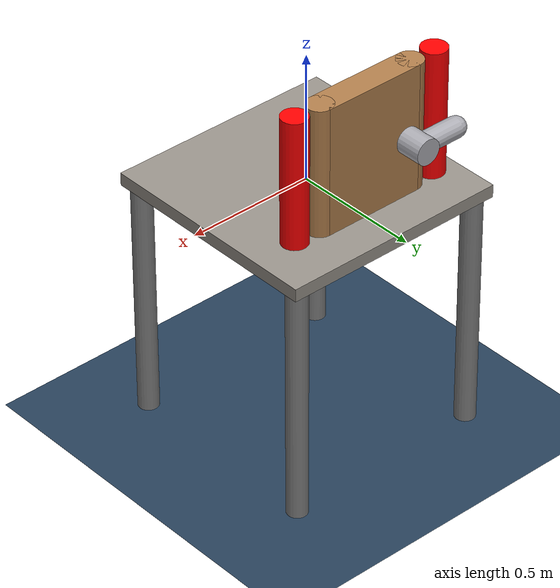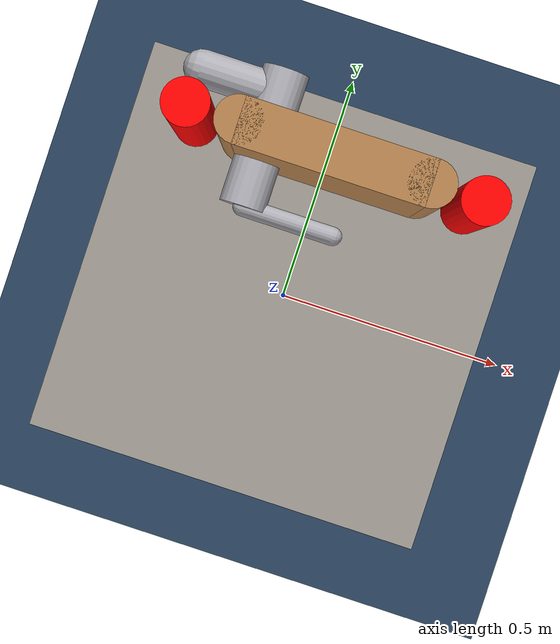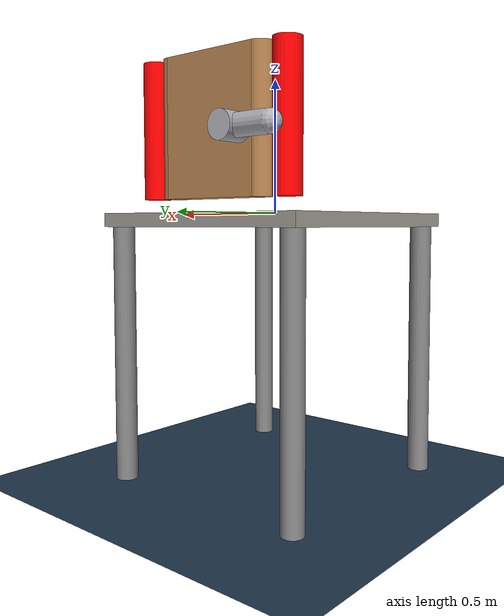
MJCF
<mujoco model='Door-Open-Environment'>

    <!-- ======= COMPILER & OPTIONS ======= -->
    <compiler angle="radian" meshdir='resources/meshes/' texturedir='resources/textures/' />
    <option apirate="200" iterations="20" noslip_iterations="20"/>
    <size njmax="500" nconmax="100" nstack="600000" nuser_body="9" nuser_jnt="1" nuser_site="1" nuser_tendon="1" nuser_actuator="16" nuser_sensor="1" />

    <!-- ======= VISUAL SETTINGS ======= -->
    <visual>
        <global offwidth="3024" offheight="1680" />
        <quality shadowsize="4096" offsamples="8" />
        <map force="0.1" fogend="5" />
    </visual>

    <!-- ======= DEFAULTS ======= -->
    <default class="main">
        <mesh scale="0.001 0.001 0.001" />
        <joint limited="true" margin="0.01" armature="0.001" damping="0.05" frictionloss="0.001" />
        <geom friction="1 0.5 0.01" margin="0.0005" />
        <site size="0.005 0 0" rgba="0.4 0.9 0.4 1" />
        <tendon limited="true" />
        <general ctrllimited="true" ctrlrange="-1 1" user="0 1 0.03 0.0939711 0.513477 0.0358776 1.23598 8.40409 0.485031 6.04244 1.02187 0.175297 0.121642 0 0 0" />
    </default>

    <!-- ======= ASSETS ======= -->
    <asset>
        <!-- Textures -->
        <texture type="cube" name="texgeom" builtin="flat" mark="cross" rgb1="0.3 0.6 0.5" rgb2="0.3 0.6 0.5" width="127" height="762" />
        <texture type="cube" name="wood" file="wood.png" />
        <texture type="2d" name="wood2d" file="wood.png" />
        <texture type="cube" name="square" file="square.png" />
        <texture type="cube" name="foil" file="silverRaw.png" />
        <texture type="cube" name="woodb" file="woodb.png" />
        <texture type="2d" name="groundplane" builtin="checker" rgb1="0.2 0.3 0.4" rgb2="0.1 0.2 0.3" width="100" height="100" />
        <texture type="2d" name="marble2d" file="marble.png" />
        <texture type="cube" name="marblecube" file="marble.png" />

        <!-- Materials -->
        <material name="MatColl" specular="1" shininess="0.3" reflectance="0.5" rgba="0.4 0.5 0.6 1" />
        <material name="MatViz" specular="0.75" shininess="0.1" reflectance="0.5" rgba="0.9 0.7 0.5 1" />
        <material name="MatGnd" specular="0.3" shininess="0.3" reflectance="0.3" rgba="0.5 0.55 0.5 1" />
        <material name="object" texture="texgeom" />
        <material name="groundplane" texture="groundplane" texrepeat="10 10" />
        <material name="table2d" texture="marble2d" reflectance="0.3" rgba="0.8 0.8 0.8 1" />
        <material name="tablecube" texture="marblecube" rgba="0.8 0.8 0.8 1" />
        <material name="MatFoil" texture="foil" specular="1" shininess="0.3" rgba="0.9 0.9 0.9 1" />
        <material name="MatPlane" specular="0.3" shininess="0.3" rgba="0.3 0.3 0.2 1" />
        <material name="MatWood" texture="wood" texrepeat="3 3" specular="0.4" shininess="0.1" />
        <material name="MatSquare" texture="square" specular="1" shininess="0.6" rgba="0.8 0.8 0.8 1" />
        <material name="MatWoodR" texture="wood" specular="1" shininess="0.3" rgba="1 0.5 0.5 1" />
        <material name="MatWoodG" texture="wood" specular="1" shininess="0.3" rgba="0.2 1 0.2 1" />
        <material name="MatWoodB" texture="woodb" specular="1" shininess="0.3" />
    </asset>

    <!-- ======= WORLD ======= -->
    <worldbody>
        <!-- Lighting -->
        <light directional='false' diffuse='.7 .7 .7' specular='0.03 0.03 0.03' pos='-1 -1.0 4.0' dir='1 1.0 -4'/>

        <!-- Ground -->
        <geom name='ground' size="1.5 1.5 0.25" pos="0 0 -1" type="plane" contype="1" conaffinity="0" material="groundplane" />

        <!-- Cameras -->
        <camera name="fixed" pos="0 -0.7 0.7" quat="0.92388 0.382683 0 0" />
        <camera name="vil_camera" pos="0 -1.2 1.2" quat="0.92388 0.382683 0 0" />

        <!-- ======= TABLE ======= -->
        <body name="table">
            <geom size="0.45 0.45 0.025" pos="0 0 -0.025" type="box" material="tablecube" />
            <geom size="0.04 0.5" pos="0.4 0.4 -0.501" quat="0 1 0 0" type="cylinder" contype="0" conaffinity="0" />
            <geom size="0.04 0.5" pos="-0.4 0.4 -0.501" quat="0 1 0 0" type="cylinder" contype="0" conaffinity="0" />
            <geom size="0.04 0.5" pos="0.4 -0.4 -0.501" quat="0 1 0 0" type="cylinder" contype="0" conaffinity="0" />
            <geom size="0.04 0.5" pos="-0.4 -0.4 -0.501" quat="0 1 0 0" type="cylinder" contype="0" conaffinity="0" />
        </body>

        <!-- ======= DOOR FRAME ======= -->
        <body name="frame" pos="-0.28 0.3 0.3" user="1001 0 2002 -0.4 -0.1 0.252 0 0.3 0.45">
            <inertial pos="0.29 0 0" quat="0.5 0.5 0.5 0.5" mass="7.85398" diaginertia="0.923301 0.764585 0.168533" />
            <geom size="0.05 0.25" pos="0.6 0 0" type="cylinder" material="MatWood" rgba="1 0 0 1" />
            <geom size="0.05 0.25" pos="-0.02 0 0" type="cylinder" material="MatWood" rgba="1 0 0 1" />
            <site name="S_handle_target" pos="0.75 -0.5 -.18" size="0.025" group='3'/>

            <!-- ======= DOOR ======= -->
            <body name="door" pos="0.29 0 0">
                <inertial pos="0.0296816 -0.00152345 0" quat="0.701072 0 0 0.713091" mass="2.43455" diaginertia="0.0913751 0.0521615 0.043714" />
                <joint name="door_hinge" pos="0.31 0 0" axis="0 0 1" range="0 1.57" damping="1" frictionloss="2" />
                <geom size="0.2 0.05 0.25" type="box" friction="1 1 1" material="MatWood" />
                <geom size="0.05 0.25" pos="0.2 0 0" type="cylinder" material="MatWood" />
                <geom size="0.05 0.25" pos="-0.2 0 0" type="cylinder" material="MatWood" />

                <!-- ======= LATCH ======= -->
                <body name="latch" pos="-0.15 0 -0.025">
                    <inertial pos="-0.017762 0.0138544 0" quat="0.365653 0.605347 -0.36522 0.605365" mass="3.53743" diaginertia="0.0483771 0.0410001 0.0111013" />
                    <joint name="latch" pos="0 0 0" axis="0 1 0" range="0 1.8" frictionloss="5" />
                    <geom size="0.05 0.15" quat="0.707388 0.706825 0 0" type="cylinder" material="MatFoil" />
                    <geom size="0.02 0.1" pos="0.1 -0.15 0" quat="0.707388 0 0.706825 0" type="capsule" material="MatFoil" />
                    <geom size="0.04 0.07" pos="-0.1 0.1 0" quat="0.707388 0 0.706825 0" type="capsule" material="MatFoil" />
                    <site name="S_handle" pos="0.15 -0.15 0" size="0.025" group='3'/>
                </body>
            </body>
        </body>

    </worldbody>

</mujoco>
